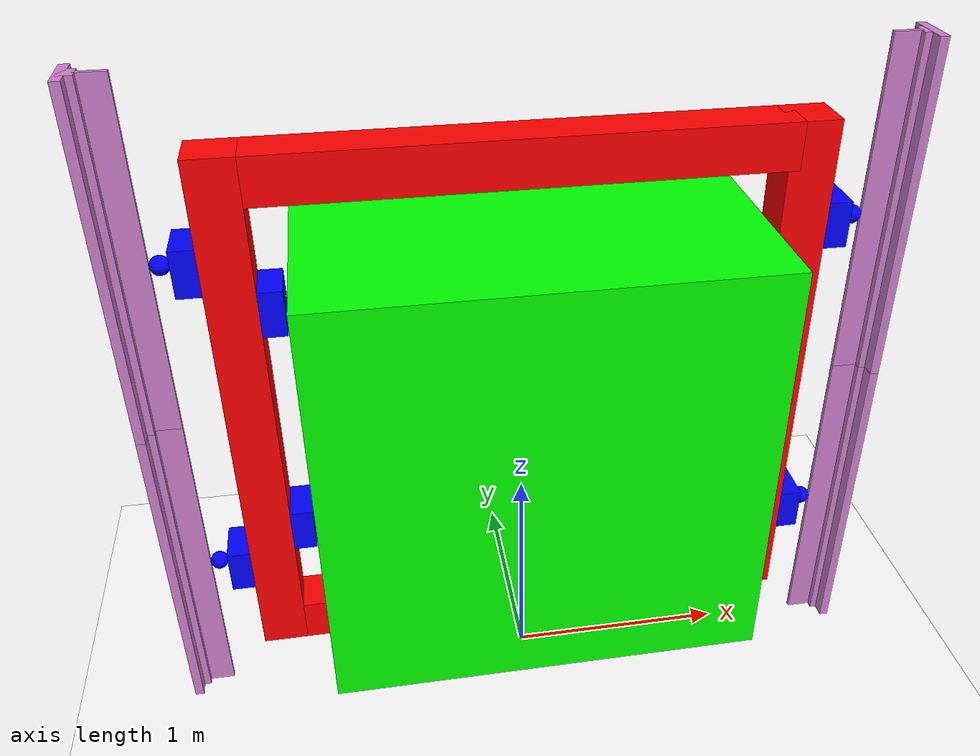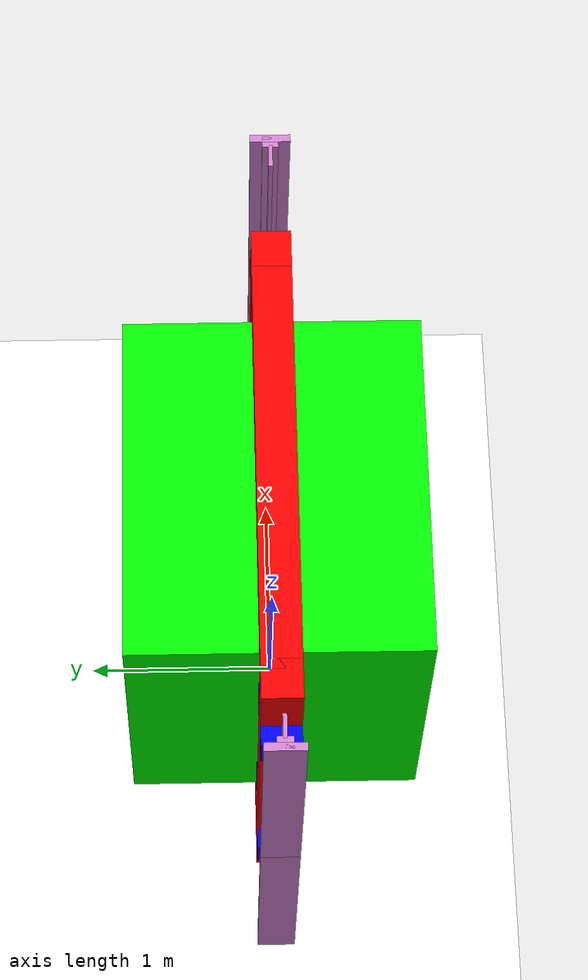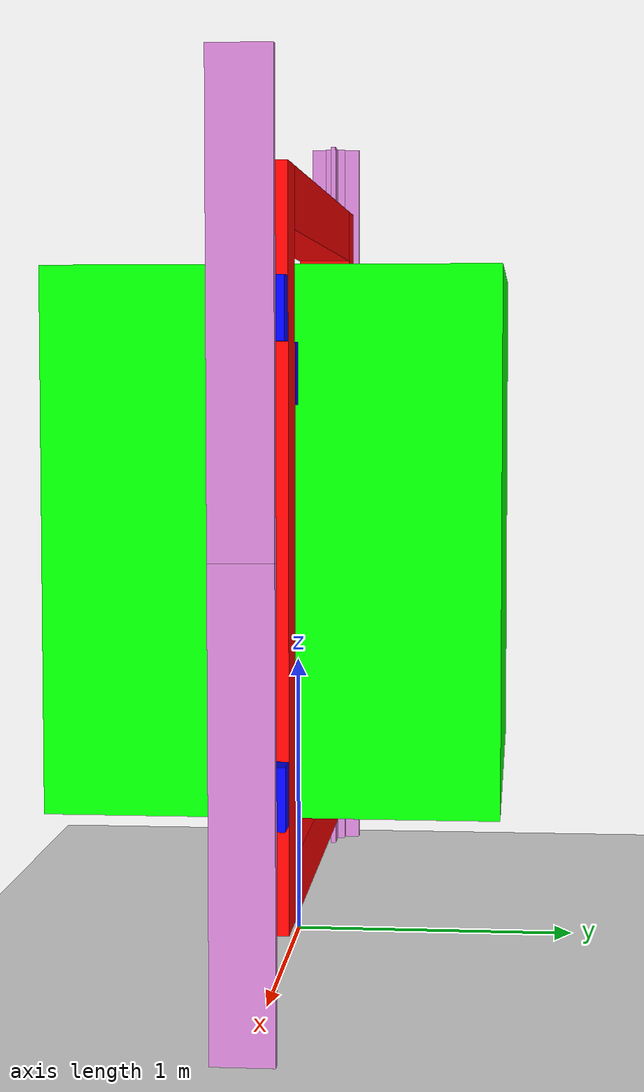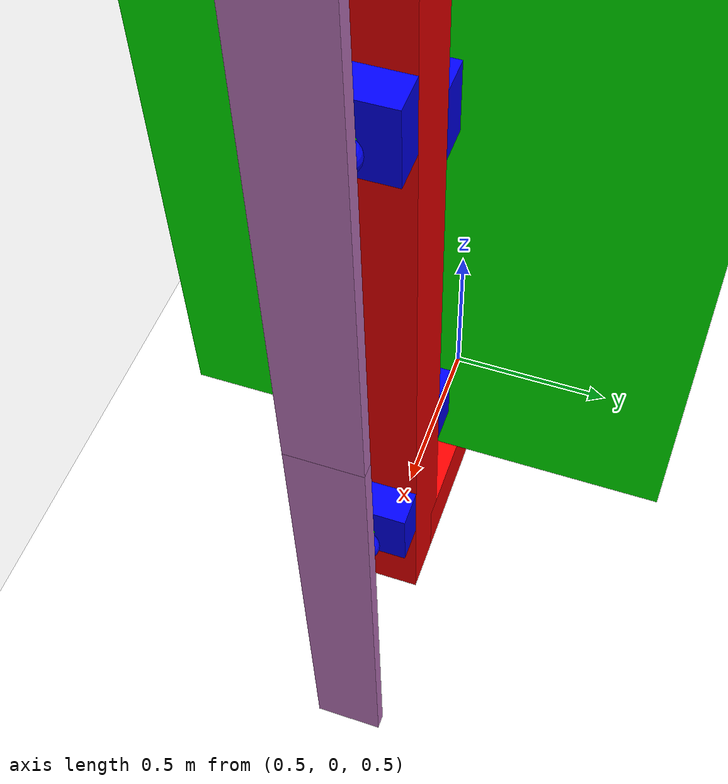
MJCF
<?xml version="1.0" encoding="UTF-8"?>
<mujoco model="elevator">
    <!-- 出图用 -->
    <visual>
        <global offwidth="7680" offheight="4320"/>
      </visual>
    <asset>
        <texture type="skybox" builtin="gradient" rgb1="1 1 1" rgb2="1 1 1" width="256" height="1536"/>
    </asset>

    <compiler angle="radian" coordinate="local"/>
    <!--使用弧度作为角度单位, 局部坐标系-->

    <option gravity="0 0 -9.81" integrator="RK4" timestep="0.001"/>
    <!-- 重力加速度, 积分器, 时间步长 -->

    <worldbody>
        <!-- 地面 -->
        <geom name="ground" type="plane" size="5 5 0.1" pos="0 0 -0.1" rgba="1 1 1 0.1"/>

        <!-- ######################################### 导轨 ######################################### -->
        <!-- 导轨1 -->
        <body name="rail1" pos="1.5 0 2.25">
            <joint name="rail_joint_1" type="slide" axis="1 0 0" range="-0.01 0.01"/>
            <geom type="box" size="0.02 0.1 0.75" pos="0.1 0 0" density="7850" rgba="0.8 0.5 0.8 1"/>
            <geom type="box" size="0.03 0.04 0.75" pos="0.08 0 0" density="7850" rgba="0.8 0.5 0.8 1"/>
            <geom type="box" size="0.06 0.01 0.75" pos="0 0 0" density="7850" rgba="0.8 0.5 0.8 1"/>
            <site name="rail_1" pos="-0.06 0 0" size="0.01" rgba="0 1 0 1"/>
        </body>
        <!-- 导轨2 -->
        <body name="rail2" pos="1.5 0 0.75">
            <joint name="rail_joint_2" type="slide" axis="1 0 0" range="-0.01 0.01"/>
            <geom type="box" size="0.02 0.1 0.75" pos="0.1 0 0" density="7850" rgba="0.8 0.5 0.8 1"/>
            <geom type="box" size="0.03 0.04 0.75" pos="0.08 0 0" density="7850" rgba="0.8 0.5 0.8 1"/>
            <geom type="box" size="0.06 0.01 0.75" pos="0 0 0" density="7850" rgba="0.8 0.5 0.8 1"/>
            <site name="rail_2" pos="-0.06 0 0" size="0.01" rgba="0 1 0 1"/>
        </body>
        <!-- 导轨3 -->
        <body name="rail3" pos="-1.5 0 2.25">
            <joint name="rail_joint_3" type="slide" axis="1 0 0" range="-0.01 0.01"/>
            <geom type="box" size="0.02 0.1 0.75" pos="-0.1 0 0" density="7850" rgba="0.8 0.5 0.8 1"/>
            <geom type="box" size="0.03 0.04 0.75" pos="-0.08 0 0" density="7850" rgba="0.8 0.5 0.8 1"/>
            <geom type="box" size="0.06 0.01 0.75" pos="0 0 0" density="7850" rgba="0.8 0.5 0.8 1"/>
            <site name="rail_3" pos="0.06 0 0" size="0.01" rgba="0 1 0 1"/>
        </body>
        <!-- 导轨4 -->
        <body name="rail4" pos="-1.5 0 0.75">
            <joint name="rail_joint_4" type="slide" axis="1 0 0" range="-0.01 0.01"/>
            <geom type="box" size="0.02 0.1 0.75" pos="-0.1 0 0" density="7850" rgba="0.8 0.5 0.8 1"/>
            <geom type="box" size="0.03 0.04 0.75" pos="-0.08 0 0" density="7850" rgba="0.8 0.5 0.8 1"/>
            <geom type="box" size="0.06 0.01 0.75" pos="0 0 0" density="7850" rgba="0.8 0.5 0.8 1"/>
            <site name="rail_4" pos="0.06 0 0" size="0.01" rgba="0 1 0 1"/>
        </body>

        <!-- ######################################### 导轮 ######################################### -->

        <!-- 导轮1 -->
        <body name="guide_wheel1" pos="1.4 0 2.25">
            <joint name="guide_wheel_joint_1" type="slide" axis="1 0 0" range="-0.1 0.1"/>
            <geom type="sphere" size="0.04" density="500" rgba="0 0 1 1"/>
        </body>
        <!-- 导轮2 -->
        <body name="guide_wheel2" pos="1.4 0 0.75">
            <joint name="guide_wheel_joint_2" type="slide" axis="1 0 0" range="-0.1 0.1"/>
            <geom type="sphere" size="0.04" density="500" rgba="0 0 1 1"/>
        </body>
        <!-- 导轮3 -->
        <body name="guide_wheel3" pos="-1.4 0 2.25">
            <joint name="guide_wheel_joint_3" type="slide" axis="1 0 0" range="-0.1 0.1"/>
            <geom type="sphere" size="0.04" density="500" rgba="0 0 1 1"/>
        </body>
        <!-- 导轮4 -->
        <body name="guide_wheel4" pos="-1.4 0 0.75">
            <joint name="guide_wheel_joint_4" type="slide" axis="1 0 0" range="-0.1 0.1"/>
            <geom type="sphere" size="0.04" density="500" rgba="0 0 1 1"/>
        </body>

        <!-- ######################################## 导靴 ##################################### -->
        <!-- 导靴1 -->
        <body name="guide_boot1" pos="1.3 0 2.25">
            <joint name="guide_boot_joint_1" type="slide" axis="1 0 0" range="-0.1 0.1"/>
            <geom type="box" size="0.05 0.1 0.1" density="5000" rgba="0 0 1 1"/>
            <site name="guide_shoe1" pos="0.05 0 0" size="0.01" rgba="0 1 0 1"/>
        </body>
        <!-- 导靴2 -->
        <body name="guide_boot2" pos="1.3 0 0.75">
            <joint name="guide_boot_joint_2" type="slide" axis="1 0 0" range="-0.1 0.1"/>
            <geom type="box" size="0.05 0.1 0.1" density="5000" rgba="0 0 1 1"/>
            <site name="guide_shoe2" pos="0.05 0 0" size="0.01" rgba="0 1 0 1"/>
        </body>
        <!-- 导靴3 -->
        <body name="guide_boot3" pos="-1.3 0 2.25">
            <joint name="guide_boot_joint_3" type="slide" axis="1 0 0" range="-0.1 0.1"/>
            <geom type="box" size="0.05 0.1 0.1" density="5000" rgba="0 0 1 1"/>
            <site name="guide_shoe3" pos="-0.05 0 0" size="0.01" rgba="0 1 0 1"/>
        </body>
        <!-- 导靴4 -->
        <body name="guide_boot4" pos="-1.3 0 0.75">
            <joint name="guide_boot_joint_4" type="slide" axis="1 0 0" range="-0.1 0.1"/>
            <geom type="box" size="0.05 0.1 0.1" density="5000" rgba="0 0 1 1"/>
            <site name="guide_shoe4" pos="-0.05 0 0" size="0.01" rgba="0 1 0 1"/>
        </body>

        <!-- ######################################## 轿架 ######################################## -->
        <!-- 轿架 -->
        <body name="frame" pos="0 0 1.5">
            <joint name="frame_x" type="slide" axis="1 0 0" range="-0.1 0.1"/>
            <joint name="frame_r" type="hinge" axis="0 1 0" range="-0.1 0.1"/>
            <geom type="box" size="1.1 0.1 0.1" pos="0 0 1.1" density="300" rgba="1 0 0 1"/>
            <geom type="box" size="1.1 0.1 0.1" pos="0 0 -1.1" density="300" rgba="1 0 0 1"/>
            <geom type="box" size="0.1 0.1 1.2" pos="1.15 0 0" density="300" rgba="1 0 0 1"/>
            <geom type="box" size="0.1 0.1 1.2" pos="-1.15 0 0" density="300" rgba="1 0 0 1"/>
            <site name="frame1" pos="1.25 0 0.75" size="0.01" rgba="1 1 0 1"/>
            <site name="frame2" pos="1.25 0 -0.75" size="0.01" rgba="1 1 0 1"/>
            <site name="frame3" pos="-1.25 0 0.75" size="0.01" rgba="1 1 0 1"/>
            <site name="frame4" pos="-1.25 0 -0.75" size="0.01" rgba="1 1 0 1"/>
            <site name="frame5" pos="1.05 0 0.55" size="0.01" rgba="1 1 0 1"/>
            <site name="frame6" pos="1.05 0 -0.55" size="0.01" rgba="1 1 0 1"/>
            <site name="frame7" pos="-1.05 0 0.55" size="0.01" rgba="1 1 0 1"/>
            <site name="frame8" pos="-1.05 0 -0.55" size="0.01" rgba="1 1 0 1"/>
            <site name="frame0" pos="0 0 0" size="0.01" rgba="1 1 0 1"/>
        </body>

        <!-- ######################################## 减震垫 ######################################## -->
        <!-- 减震垫1 -->
        <body name="shock_absorber1" pos="1 0 2.25">
            <joint name="shock_absorber_joint_1" type="slide" axis="1 0 0" range="-0.1 0.1"/>
            <geom type="box" size="0.05 0.1 0.1" pos="0 0 -0.2" density="5000" rgba="0 0 1 1"/>
        </body>
        <!-- 减震垫2 -->
        <body name="shock_absorber2" pos="1 0 0.75">
            <joint name="shock_absorber_joint_2" type="slide" axis="1 0 0" range="-0.1 0.1"/>
            <geom type="box" size="0.05 0.1 0.1" pos="0 0 0.2" density="5000" rgba="0 0 1 1"/>
        </body>
        <!-- 减震垫3 -->
        <body name="shock_absorber3" pos="-1 0 2.25">
            <joint name="shock_absorber_joint_3" type="slide" axis="1 0 0" range="-0.1 0.1"/>
            <geom type="box" size="0.05 0.1 0.1" pos="0 0 -0.2" density="5000" rgba="0 0 1 1"/>
        </body>
        <!-- 减震垫4 -->
        <body name="shock_absorber4" pos="-1 0 0.75">
            <joint name="shock_absorber_joint_4" type="slide" axis="1 0 0" range="-0.1 0.1"/>
            <geom type="box" size="0.05 0.1 0.1" pos="0 0 0.2" density="5000" rgba="0 0 1 1"/>
        </body>

        <!-- ######################################### 轿厢 ######################################### -->
        <!-- 轿厢 -->
        <body name="car" pos="0 0 1.5">
            <joint name="car_x" type="slide" axis="1 0 0" range="-0.1 0.1"/>
            <joint name="car_r" type="hinge" axis="0 1 0" range="-0.1 0.1"/>
            <geom type="box" size="0.9 0.75 0.9" density="300" rgba="0 1 0 1"/>
            <site name="car1" pos="0.9 0 0.55" size="0.01" rgba="1 1 0 1"/>
            <site name="car2" pos="0.9 0 -0.55" size="0.01" rgba="1 1 0 1"/>
            <site name="car3" pos="-0.9 0 0.55" size="0.01" rgba="1 1 0 1"/>
            <site name="car4" pos="-0.9 0 -0.55" size="0.01" rgba="1 1 0 1"/>
            <site name="car0" pos="0 0 0" size="0.01" rgba="1 1 0 1"/>
        </body>

    </worldbody>

    <!-- 被动减振系统 -->
    <tendon>
        <!-- 减振垫 -->
        <spatial name="shock_absorber1" stiffness="20000" damping="500">
            <site site="frame1"/>
            <site site="car1"/>
        </spatial>
        <spatial name="shock_absorber2" stiffness="20000" damping="500">
            <site site="frame2"/>
            <site site="car2"/>
        </spatial>
        <spatial name="shock_absorber3" stiffness="20000" damping="500">
            <site site="frame3"/>
            <site site="car3"/>
        </spatial>
        <spatial name="shock_absorber4" stiffness="20000" damping="500">
            <site site="frame4"/>
            <site site="car4"/>
        </spatial>
        <!-- 导轮 -->
        <spatial name="guide_wheel1" stiffness="20000" damping="500">
            <site site="rail_1"/>
            <site site="guide_shoe1"/>
        </spatial>
        <spatial name="guide_wheel2" stiffness="20000" damping="500">
            <site site="rail_2"/>
            <site site="guide_shoe2"/>
        </spatial>
        <spatial name="guide_wheel3" stiffness="20000" damping="500">
            <site site="rail_3"/>
            <site site="guide_shoe3"/>
        </spatial>
        <spatial name="guide_wheel4" stiffness="20000" damping="500">
            <site site="rail_4"/>
            <site site="guide_shoe4"/>
        </spatial>
        <!-- 导靴 -->
        <spatial name="guide_boot1" stiffness="20000" damping="500">
            <site site="guide_shoe1"/>
            <site site="frame1"/>
        </spatial>
        <spatial name="guide_boot2" stiffness="20000" damping="500">
            <site site="guide_shoe2"/>
            <site site="frame2"/>
        </spatial>
        <spatial name="guide_boot3" stiffness="20000" damping="500">
            <site site="guide_shoe3"/>
            <site site="frame3"/>
        </spatial>
        <spatial name="guide_boot4" stiffness="20000" damping="500">
            <site site="guide_shoe4"/>
            <site site="frame4"/>
        </spatial>

    </tendon>

    <!-- 外部输入 -->
    <actuator>

        <!-- 主动导靴 -->
        <motor name="z1" joint="guide_boot_joint_1" ctrlrange="-300 300" ctrllimited="true"/>
        <motor name="z2" joint="guide_boot_joint_2" ctrlrange="-300 300" ctrllimited="true"/>
        <motor name="z3" joint="guide_boot_joint_3" ctrlrange="-300 300" ctrllimited="true"/>
        <motor name="z4" joint="guide_boot_joint_4" ctrlrange="-300 300" ctrllimited="true"/>

        <!-- 导轨激励 -->
        <position name="rail1" joint="rail_joint_1" kp="100" />
        <position name="rail2" joint="rail_joint_2" kp="100" />
        <position name="rail3" joint="rail_joint_3" kp="100" />
        <position name="rail4" joint="rail_joint_4" kp="100" />

        <!-- 风载荷激励 -->
        <motor name="wind_force_x" joint="car_x" ctrlrange="-50 50" ctrllimited="true"/>

        <!-- 曳引绳激励 -->
        <motor name="rope_force" joint="frame_x" ctrlrange="-200 200" ctrllimited="true"/>
    </actuator>

    <!-- 传感器 -->
    <sensor>
        <!-- 轿架传感器 --><!-- 无角加速度测量 -->
        <jointpos name="frame_x_pos" joint="frame_x"/>
        <jointvel name="frame_x_vel" joint="frame_x"/>
        <accelerometer name="frame_x_acc" site="frame0"/>
        <jointpos name="frame_r_pos" joint="frame_r"/>
        <jointvel name="frame_r_vel" joint="frame_r"/>
        <gyro name="frame_r_acc" site="frame0"/>

        <!-- 轿厢传感器 --><!-- 无角加速度测量 -->
        <jointpos name="car_x_pos" joint="car_x"/>
        <jointvel name="car_x_vel" joint="car_x"/>
        <accelerometer name="car_x_acc" site="car0"/>
        <jointpos name="car_r_pos" joint="car_r"/>
        <jointvel name="car_r_vel" joint="car_r"/>
        <gyro name="car_r_acc" site="car0"/>
    </sensor>

</mujoco>
